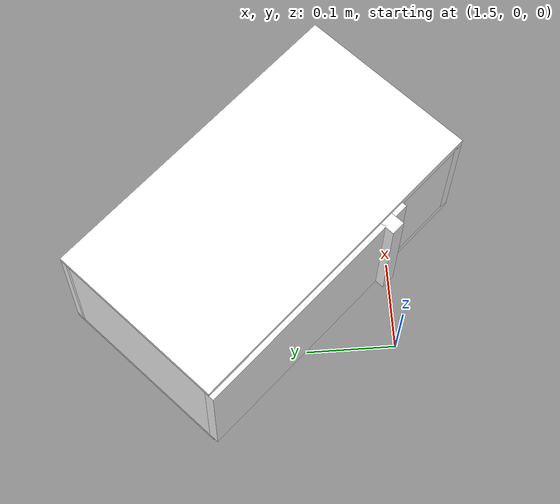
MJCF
<mujoco model="cabinet">
    <compiler angle="radian" eulerseq='zxy' />
    <option gravity = "0 0 0" />
    <option>
        <flag contact = "disable"/>
    </option>
    <statistic	extent="1.0" center="0.0 0.0 0.0"/>
    <visual>
        <map fogstart="3" fogend="5" force="0.1" znear=" 0.100000 " zfar=" 12.000000 "/>
    </visual>
    <size njmax="500" nconmax="100" />
    <actuator>
        <velocity joint="bottom_left_hinge" name="viva_revolution" kv='10'></velocity>
    </actuator>
    <asset>
        <texture builtin="flat" name="tabletex" height="32" width="32" rgb1="1 1 1" type="cube"></texture>
        <texture builtin="flat" name="objtex" height="32" width="32" rgb1="1 1 1" type="cube"></texture>
        <texture builtin="flat" name="handletex" height="32" width="32" rgb1="1 1 1" type="cube"></texture>
        <texture builtin="flat" name="wallpaper" height="32" width="32" rgb1="1 0 0" type="cube"></texture>
        <texture builtin="flat" name="kp" height="32" width="32" rgb1="1 1 1" type="cube"></texture>
        <material name="geomTable" shininess="0.03" specular="0.75" texture="tabletex"></material>
        <material name="geomObj" shininess="0.03" specular="0.75" texture="objtex"></material>
        <material name="geomHandle" shininess="0.03" specular="0.75" texture="handletex"></material>
        <material name="ax" shininess="0.03" specular="0.75" texture="wallpaper"></material>
        <material name="bg" shininess="0.03" specular="0.75" texture="wallpaper"></material>
        <material name="geomKeypad" shininess="0.03" specular="0.75" texture="kp"></material>
    </asset>
    <worldbody>
        <body name="cabinet_bottom" pos= " 1.734704 0.130903 -0.261278 "  quat= " -0.365927 0.000000 0.000000 0.930643" >
            <inertial pos="0 0 0" mass="1" diaginertia="1 1 1" />
            <geom size= " 0.126349 0.230943 0.006985 "  type="box" material="geomObj" name="b"/>
            <body name="cabinet_left" pos= " 0.000000 -0.223958 0.086463 " >
                <inertial pos="0 0 0" mass="1" diaginertia="1 1 1" />
                <geom size= " 0.126349 0.006985 0.086463 "  type="box" material="geomObj" name="c" />
            </body>
            <body name="cabinet_right" pos= " 0.000000 0.223958 0.086463 " >
                <inertial pos="0 0 0" mass="1" diaginertia="1 1 1" />
                <geom size= " 0.126349 0.006985 0.086463 "  type="box" material="geomObj" name="d" />
            </body>
            <body name="cabinet_top" pos= " 0.000000 0.000000 0.172926 " >
                <inertial pos="0 0 0" mass="1" diaginertia="1 1 1" />
                <geom size= " 0.126349 0.230943 0.006985 "  type="box" material="geomObj" name="e"/>
            </body>
            <body name="cabinet_back" pos= " -0.119364 0.000000 0.086463 "  >
                <inertial pos="0 0 0" mass="1" diaginertia="1 1 1" />
                <geom size= " 0.006985 0.230943 0.086463 "  type="box" material="geomObj" name="f" />
            </body>
            <body name="cabinet_keypad" pos= " 0.006985 0.172207 0.086463 " >
                <inertial pos="0 0 0" mass="1" diaginertia="1 1 1" />
                <geom size= " 0.119364 0.057736 0.079477 "  type="box" material="geomKeypad" name="keypizzlemynizzle" />
            </body>
            <body name="cabinet_left_hinge" pos= " 0.126349 -0.230943 0.086463 " >
                <inertial pos= " 0.000000 0.173207 0.000000 "  mass="1" diaginertia="1 1 1" />
                <joint name="bottom_left_hinge" type="hinge" pos="0 0 0" axis="0 0 1" limited="true" range= "-2.3 0"  />
                <geom size= " 0.006985 0.173207 0.086463 "  pos= " 0.000000 0.173207 0.000000 "  type="box" material="geomObj" name="g"/>
                <body name="handle_link" pos= " 0.010000 0.316415 0.000000 " >
                    <inertial pos="0 0 0" mass="1" diaginertia="1 1 1" />
                    <geom size= " 0.010000 0.010000 0.086463 "  type="box" material="geomHandle" name="h"/>
                </body>
            </body>
        </body>
        <body name="external_camera_body_0" pos="0.0 0 0.00" >
            <camera euler="-1.57 1.57 0.0" fovy=" 54.280851 " name="external_camera_0" pos="0.0 0 0"></camera>
            <inertial pos= " 0.00 0.0 0.000000 " mass="1" diaginertia="1 1 1" />
            <joint name="cam_j" pos="0.0 0 0" axis = "1 0 0" type="free" />
        </body>
    </worldbody>
</mujoco>
